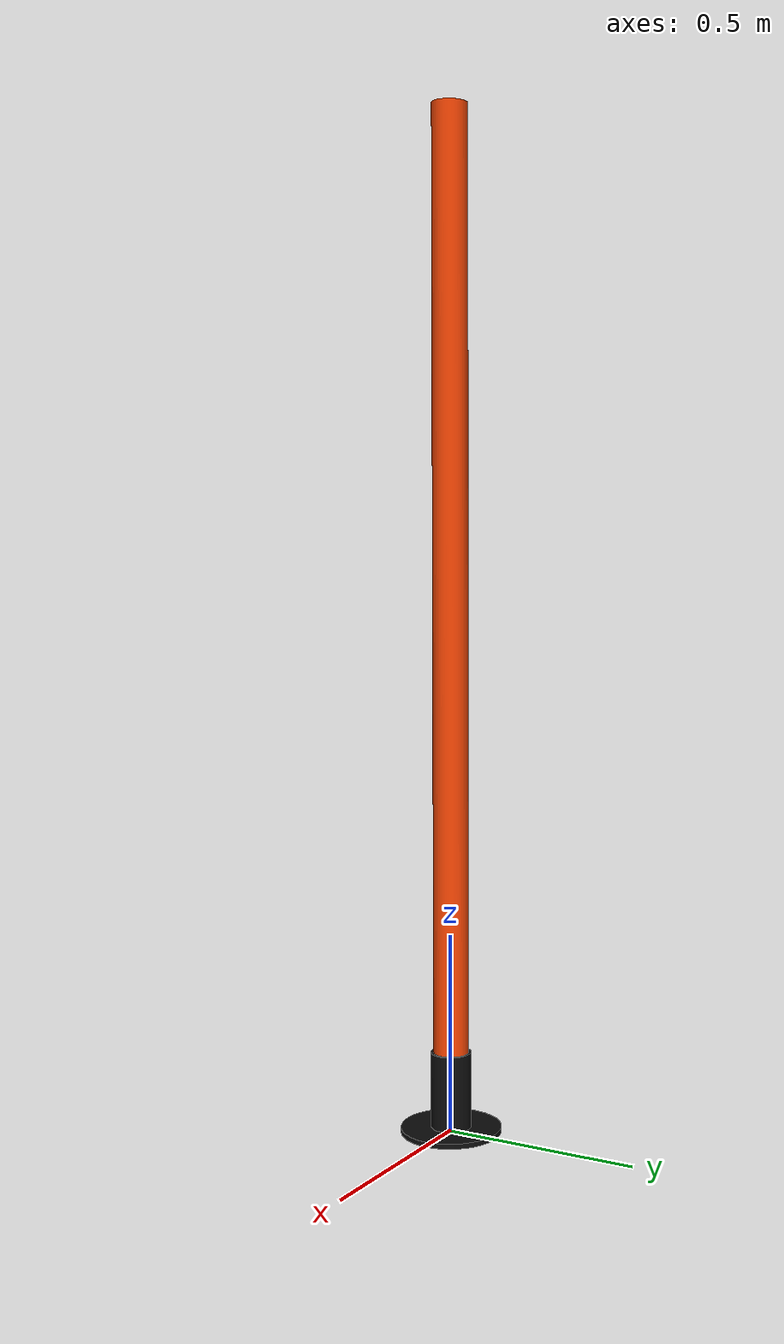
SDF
<?xml version="1.0" ?>
<sdf version="1.9">
    <model name="pole">
        <static>true</static>
        <link name="pole">
            <visual name="pole_visual">
                <geometry>
                    <mesh>
                        <uri>pole.dae</uri>
                    </mesh>
                </geometry>
            </visual>
            <collision name="pole_visual">
                <geometry>
                    <mesh>
                        <uri>pole.dae</uri>
                    </mesh>
                </geometry>
            </collision>
        </link>
    </model>
</sdf>
